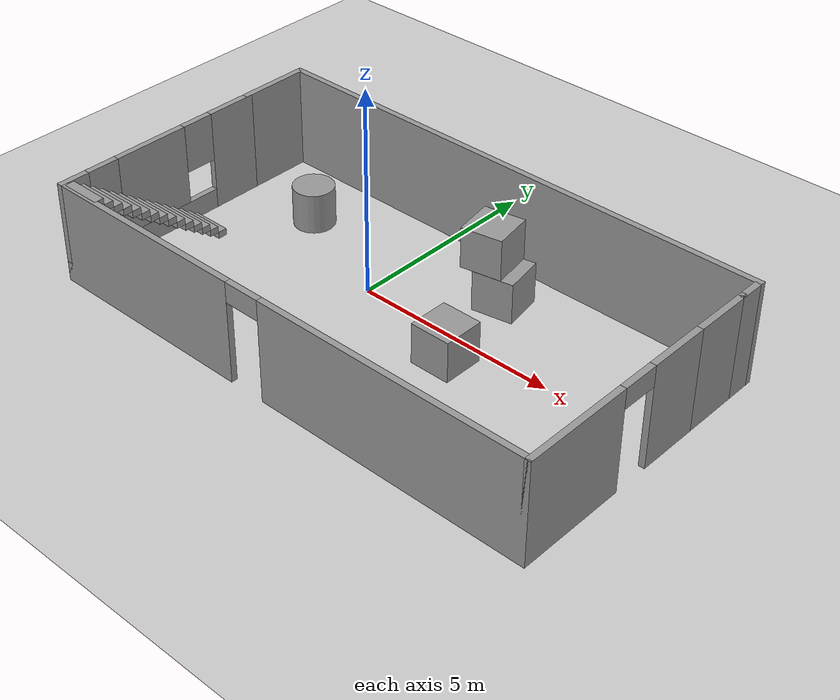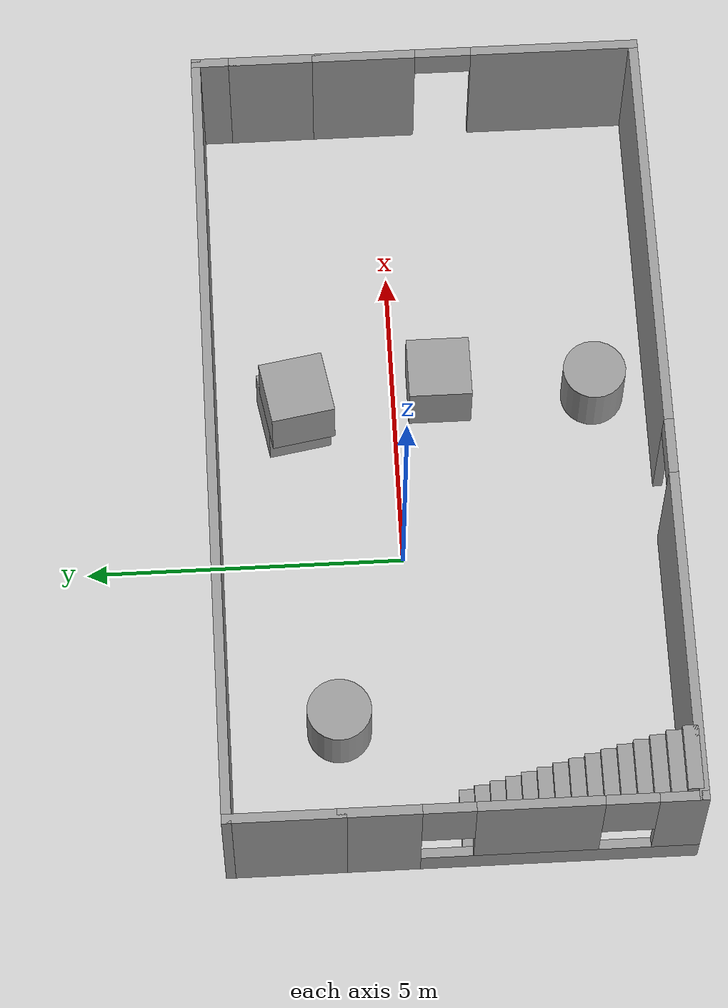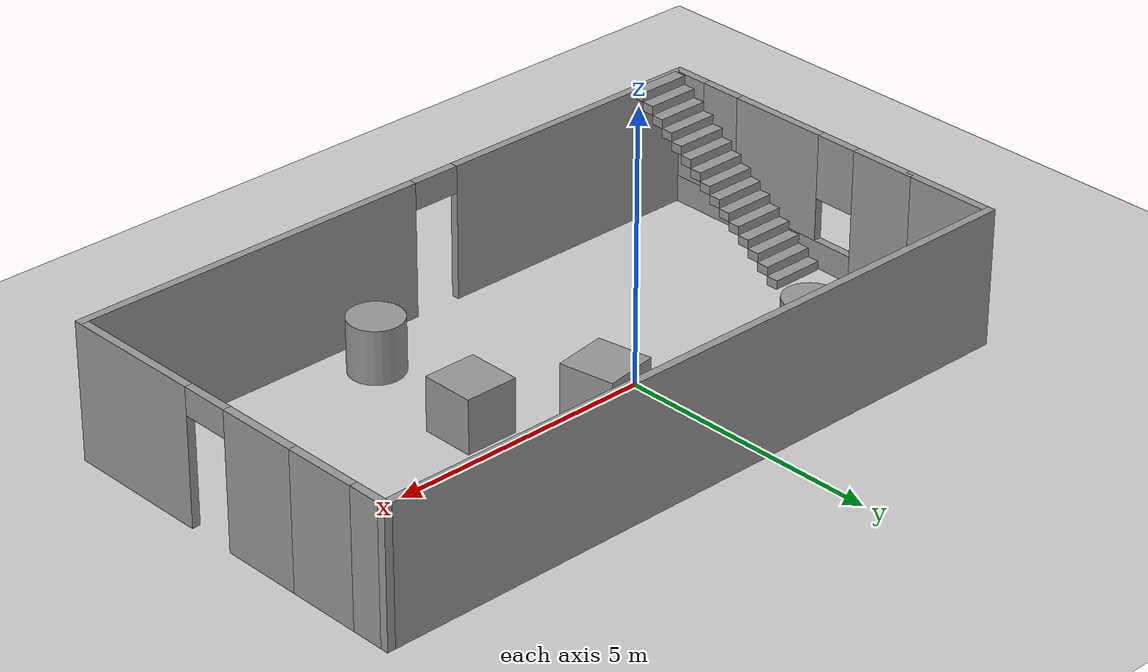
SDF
<sdf version="1.7">
 <world name="default">
  <light name="sun" type="directional">
   <pose>0 0 10 0 -0 0</pose>
   <diffuse>0.8 0.8 0.8 1</diffuse>
   <specular>0.2 0.2 0.2 1</specular>
   <attenuation>
    <range>1000</range>
    <constant>0.9</constant>
    <linear>0.01</linear>
    <quadratic>0.001</quadratic>
   </attenuation>
   <direction>-0.5 0.1 -0.9</direction>
   <spot><inner_angle>0</inner_angle><outer_angle>0</outer_angle><falloff>0</falloff></spot>
  </light>
  <model name="ground_plane">
   <static>1</static>
   <link name="link">
    <collision name="collision">
     <geometry><plane><normal>0 0 1</normal><size>100 100</size></plane></geometry>
     <surface><friction><ode><mu>100</mu><mu2>50</mu2></ode></friction></surface>
    </collision>
    <visual name="visual">
     <cast_shadows>0</cast_shadows>
     <geometry><plane><normal>0 0 1</normal><size>100 100</size></plane></geometry>
     <material>
      <script><uri>file://media/materials/scripts/gazebo.material</uri><name>Gazebo/Grey</name></script>
     </material>
    </visual>
   </link>
  </model>
  <gravity>0 0 -9.8</gravity>
  <magnetic_field>6e-06 2.3e-05 -4.2e-05</magnetic_field>
  <atmosphere type="adiabatic"/>
  <physics type="ode">
   <max_step_size>0.001</max_step_size>
   <real_time_factor>1</real_time_factor>
   <real_time_update_rate>1000</real_time_update_rate>
  </physics>
  <scene><ambient>0.4 0.4 0.4 1</ambient><background>0.7 0.7 0.7 1</background><shadows>1</shadows></scene>
  <audio><device>default</device></audio>
  <spherical_coordinates>
   <surface_model>EARTH_WGS84</surface_model>
   <latitude_deg>0</latitude_deg>
   <longitude_deg>0</longitude_deg>
   <elevation>0</elevation>
   <heading_deg>0</heading_deg>
  </spherical_coordinates>
  <model name="test">
   <pose>1.38086 -0.5972 0 0 -0 0</pose>
   <link name="Stairs_0">
    <visual name="Stairs_0_Visual_0">
     <pose>-5.815 -0.141667 0.083333 0 -0 0</pose>
     <geometry><box><size>1 0.233333 0.166667</size></box></geometry>
     <material>
      <script><uri>file://media/materials/scripts/gazebo.material</uri><name>Gazebo/Grey</name></script>
      <ambient>1 1 1 1</ambient>
     </material>
     <meta><layer>0</layer></meta>
    </visual>
    <collision name="Stairs_0_Collision_0">
     <geometry><box><size>1 0.233333 0.166667</size></box></geometry>
     <pose>-5.815 -0.141667 0.083333 0 -0 0</pose>
    </collision>
    <visual name="Stairs_0_Visual_1">
     <pose>-5.815 -0.375 0.25 0 -0 0</pose>
     <geometry><box><size>1 0.233333 0.166667</size></box></geometry>
     <material>
      <script><uri>file://media/materials/scripts/gazebo.material</uri><name>Gazebo/Grey</name></script>
      <ambient>1 1 1 1</ambient>
     </material>
     <meta><layer>0</layer></meta>
    </visual>
    <collision name="Stairs_0_Collision_1">
     <geometry><box><size>1 0.233333 0.166667</size></box></geometry>
     <pose>-5.815 -0.375 0.25 0 -0 0</pose>
    </collision>
    <visual name="Stairs_0_Visual_2">
     <pose>-5.815 -0.608333 0.416667 0 -0 0</pose>
     <geometry><box><size>1 0.233333 0.166667</size></box></geometry>
     <material>
      <script><uri>file://media/materials/scripts/gazebo.material</uri><name>Gazebo/Grey</name></script>
      <ambient>1 1 1 1</ambient>
     </material>
     <meta><layer>0</layer></meta>
    </visual>
    <collision name="Stairs_0_Collision_2">
     <geometry><box><size>1 0.233333 0.166667</size></box></geometry>
     <pose>-5.815 -0.608333 0.416667 0 -0 0</pose>
    </collision>
    <visual name="Stairs_0_Visual_3">
     <pose>-5.815 -0.841667 0.583333 0 -0 0</pose>
     <geometry><box><size>1 0.233333 0.166667</size></box></geometry>
     <material>
      <script><uri>file://media/materials/scripts/gazebo.material</uri><name>Gazebo/Grey</name></script>
      <ambient>1 1 1 1</ambient>
     </material>
     <meta><layer>0</layer></meta>
    </visual>
    <collision name="Stairs_0_Collision_3">
     <geometry><box><size>1 0.233333 0.166667</size></box></geometry>
     <pose>-5.815 -0.841667 0.583333 0 -0 0</pose>
    </collision>
    <visual name="Stairs_0_Visual_4">
     <pose>-5.815 -1.075 0.75 0 -0 0</pose>
     <geometry><box><size>1 0.233333 0.166667</size></box></geometry>
     <material>
      <script><uri>file://media/materials/scripts/gazebo.material</uri><name>Gazebo/Grey</name></script>
      <ambient>1 1 1 1</ambient>
     </material>
     <meta><layer>0</layer></meta>
    </visual>
    <collision name="Stairs_0_Collision_4">
     <geometry><box><size>1 0.233333 0.166667</size></box></geometry>
     <pose>-5.815 -1.075 0.75 0 -0 0</pose>
    </collision>
    <visual name="Stairs_0_Visual_5">
     <pose>-5.815 -1.30833 0.916667 0 -0 0</pose>
     <geometry><box><size>1 0.233333 0.166667</size></box></geometry>
     <material>
      <script><uri>file://media/materials/scripts/gazebo.material</uri><name>Gazebo/Grey</name></script>
      <ambient>1 1 1 1</ambient>
     </material>
     <meta><layer>0</layer></meta>
    </visual>
    <collision name="Stairs_0_Collision_5">
     <geometry><box><size>1 0.233333 0.166667</size></box></geometry>
     <pose>-5.815 -1.30833 0.916667 0 -0 0</pose>
    </collision>
    <visual name="Stairs_0_Visual_6">
     <pose>-5.815 -1.54167 1.08333 0 -0 0</pose>
     <geometry><box><size>1 0.233333 0.166667</size></box></geometry>
     <material>
      <script><uri>file://media/materials/scripts/gazebo.material</uri><name>Gazebo/Grey</name></script>
      <ambient>1 1 1 1</ambient>
     </material>
     <meta><layer>0</layer></meta>
    </visual>
    <collision name="Stairs_0_Collision_6">
     <geometry><box><size>1 0.233333 0.166667</size></box></geometry>
     <pose>-5.815 -1.54167 1.08333 0 -0 0</pose>
    </collision>
    <visual name="Stairs_0_Visual_7">
     <pose>-5.815 -1.775 1.25 0 -0 0</pose>
     <geometry><box><size>1 0.233333 0.166667</size></box></geometry>
     <material>
      <script><uri>file://media/materials/scripts/gazebo.material</uri><name>Gazebo/Grey</name></script>
      <ambient>1 1 1 1</ambient>
     </material>
     <meta><layer>0</layer></meta>
    </visual>
    <collision name="Stairs_0_Collision_7">
     <geometry><box><size>1 0.233333 0.166667</size></box></geometry>
     <pose>-5.815 -1.775 1.25 0 -0 0</pose>
    </collision>
    <visual name="Stairs_0_Visual_8">
     <pose>-5.815 -2.00833 1.41667 0 -0 0</pose>
     <geometry><box><size>1 0.233333 0.166667</size></box></geometry>
     <material>
      <script><uri>file://media/materials/scripts/gazebo.material</uri><name>Gazebo/Grey</name></script>
      <ambient>1 1 1 1</ambient>
     </material>
     <meta><layer>0</layer></meta>
    </visual>
    <collision name="Stairs_0_Collision_8">
     <geometry><box><size>1 0.233333 0.166667</size></box></geometry>
     <pose>-5.815 -2.00833 1.41667 0 -0 0</pose>
    </collision>
    <visual name="Stairs_0_Visual_9">
     <pose>-5.815 -2.24167 1.58333 0 -0 0</pose>
     <geometry><box><size>1 0.233333 0.166667</size></box></geometry>
     <material>
      <script><uri>file://media/materials/scripts/gazebo.material</uri><name>Gazebo/Grey</name></script>
      <ambient>1 1 1 1</ambient>
     </material>
     <meta><layer>0</layer></meta>
    </visual>
    <collision name="Stairs_0_Collision_9">
     <geometry><box><size>1 0.233333 0.166667</size></box></geometry>
     <pose>-5.815 -2.24167 1.58333 0 -0 0</pose>
    </collision>
    <visual name="Stairs_0_Visual_10">
     <pose>-5.815 -2.475 1.75 0 -0 0</pose>
     <geometry><box><size>1 0.233333 0.166667</size></box></geometry>
     <material>
      <script><uri>file://media/materials/scripts/gazebo.material</uri><name>Gazebo/Grey</name></script>
      <ambient>1 1 1 1</ambient>
     </material>
     <meta><layer>0</layer></meta>
    </visual>
    <collision name="Stairs_0_Collision_10">
     <geometry><box><size>1 0.233333 0.166667</size></box></geometry>
     <pose>-5.815 -2.475 1.75 0 -0 0</pose>
    </collision>
    <visual name="Stairs_0_Visual_11">
     <pose>-5.815 -2.70833 1.91667 0 -0 0</pose>
     <geometry><box><size>1 0.233333 0.166667</size></box></geometry>
     <material>
      <script><uri>file://media/materials/scripts/gazebo.material</uri><name>Gazebo/Grey</name></script>
      <ambient>1 1 1 1</ambient>
     </material>
     <meta><layer>0</layer></meta>
    </visual>
    <collision name="Stairs_0_Collision_11">
     <geometry><box><size>1 0.233333 0.166667</size></box></geometry>
     <pose>-5.815 -2.70833 1.91667 0 -0 0</pose>
    </collision>
    <visual name="Stairs_0_Visual_12">
     <pose>-5.815 -2.94167 2.08333 0 -0 0</pose>
     <geometry><box><size>1 0.233333 0.166667</size></box></geometry>
     <material>
      <script><uri>file://media/materials/scripts/gazebo.material</uri><name>Gazebo/Grey</name></script>
      <ambient>1 1 1 1</ambient>
     </material>
     <meta><layer>0</layer></meta>
    </visual>
    <collision name="Stairs_0_Collision_12">
     <geometry><box><size>1 0.233333 0.166667</size></box></geometry>
     <pose>-5.815 -2.94167 2.08333 0 -0 0</pose>
    </collision>
    <visual name="Stairs_0_Visual_13">
     <pose>-5.815 -3.175 2.25 0 -0 0</pose>
     <geometry><box><size>1 0.233333 0.166667</size></box></geometry>
     <material>
      <script><uri>file://media/materials/scripts/gazebo.material</uri><name>Gazebo/Grey</name></script>
      <ambient>1 1 1 1</ambient>
     </material>
     <meta><layer>0</layer></meta>
    </visual>
    <collision name="Stairs_0_Collision_13">
     <geometry><box><size>1 0.233333 0.166667</size></box></geometry>
     <pose>-5.815 -3.175 2.25 0 -0 0</pose>
    </collision>
    <visual name="Stairs_0_Visual_14">
     <pose>-5.815 -3.40833 2.41667 0 -0 0</pose>
     <geometry><box><size>1 0.233333 0.166667</size></box></geometry>
     <material>
      <script><uri>file://media/materials/scripts/gazebo.material</uri><name>Gazebo/Grey</name></script>
      <ambient>1 1 1 1</ambient>
     </material>
     <meta><layer>0</layer></meta>
    </visual>
    <collision name="Stairs_0_Collision_14">
     <geometry><box><size>1 0.233333 0.166667</size></box></geometry>
     <pose>-5.815 -3.40833 2.41667 0 -0 0</pose>
    </collision>
   </link>
   <link name="Wall_0">
    <pose>-6.425 -0.85 0 0 -0 -1.5708</pose>
    <visual name="Wall_0_Visual_0">
     <pose>-2.1175 0 1.25 0 -0 0</pose>
     <geometry><box><size>1.265 0.15 2.5</size></box></geometry>
     <material>
      <script><uri>file://media/materials/scripts/gazebo.material</uri><name>Gazebo/Grey</name></script>
      <ambient>1 1 1 1</ambient>
     </material>
     <meta><layer>0</layer></meta>
    </visual>
    <collision name="Wall_0_Collision_0">
     <geometry><box><size>1.265 0.15 2.5</size></box></geometry>
     <pose>-2.1175 0 1.25 0 -0 0</pose>
    </collision>
    <visual name="Wall_0_Visual_1">
     <pose>0.6325 0 0.25 0 -0 0</pose>
     <geometry><box><size>4.235 0.15 0.5</size></box></geometry>
     <material>
      <script><uri>file://media/materials/scripts/gazebo.material</uri><name>Gazebo/Grey</name></script>
      <ambient>1 1 1 1</ambient>
     </material>
     <meta><layer>0</layer></meta>
    </visual>
    <collision name="Wall_0_Collision_1">
     <geometry><box><size>4.235 0.15 0.5</size></box></geometry>
     <pose>0.6325 0 0.25 0 -0 0</pose>
    </collision>
    <visual name="Wall_0_Visual_2">
     <pose>0.265 0 1.5 0 -0 0</pose>
     <geometry><box><size>1.9 0.15 2</size></box></geometry>
     <material>
      <script><uri>file://media/materials/scripts/gazebo.material</uri><name>Gazebo/Grey</name></script>
      <ambient>1 1 1 1</ambient>
     </material>
     <meta><layer>0</layer></meta>
    </visual>
    <collision name="Wall_0_Collision_2">
     <geometry><box><size>1.9 0.15 2</size></box></geometry>
     <pose>0.265 0 1.5 0 -0 0</pose>
    </collision>
    <visual name="Wall_0_Visual_3">
     <pose>2.3825 0 1.5 0 -0 0</pose>
     <geometry><box><size>0.735 0.15 2</size></box></geometry>
     <material>
      <script><uri>file://media/materials/scripts/gazebo.material</uri><name>Gazebo/Grey</name></script>
      <ambient>1 1 1 1</ambient>
     </material>
     <meta><layer>0</layer></meta>
    </visual>
    <collision name="Wall_0_Collision_3">
     <geometry><box><size>0.735 0.15 2</size></box></geometry>
     <pose>2.3825 0 1.5 0 -0 0</pose>
    </collision>
    <visual name="Wall_0_Visual_4">
     <pose>-1.085 0 1.9 0 -0 0</pose>
     <geometry><box><size>0.8 0.15 1.2</size></box></geometry>
     <material>
      <script><uri>file://media/materials/scripts/gazebo.material</uri><name>Gazebo/Grey</name></script>
      <ambient>1 1 1 1</ambient>
     </material>
     <meta><layer>0</layer></meta>
    </visual>
    <collision name="Wall_0_Collision_4">
     <geometry><box><size>0.8 0.15 1.2</size></box></geometry>
     <pose>-1.085 0 1.9 0 -0 0</pose>
    </collision>
    <visual name="Wall_0_Visual_5">
     <pose>1.615 0 1.9 0 -0 0</pose>
     <geometry><box><size>0.8 0.15 1.2</size></box></geometry>
     <material>
      <script><uri>file://media/materials/scripts/gazebo.material</uri><name>Gazebo/Grey</name></script>
      <ambient>1 1 1 1</ambient>
     </material>
     <meta><layer>0</layer></meta>
    </visual>
    <collision name="Wall_0_Collision_5">
     <geometry><box><size>0.8 0.15 1.2</size></box></geometry>
     <pose>1.615 0 1.9 0 -0 0</pose>
    </collision>
   </link>
   <link name="Wall_1">
    <pose>0 -3.525 0 0 -0 0</pose>
    <visual name="Wall_1_Visual_0">
     <pose>-3.8425 0 1.25 0 -0 0</pose>
     <geometry><box><size>5.315 0.15 2.5</size></box></geometry>
     <material>
      <script><uri>file://media/materials/scripts/gazebo.material</uri><name>Gazebo/Grey</name></script>
      <ambient>1 1 1 1</ambient>
     </material>
     <meta><layer>0</layer></meta>
    </visual>
    <collision name="Wall_1_Collision_0">
     <geometry><box><size>5.315 0.15 2.5</size></box></geometry>
     <pose>-3.8425 0 1.25 0 -0 0</pose>
    </collision>
    <visual name="Wall_1_Visual_1">
     <pose>3.1075 0 1.25 0 -0 0</pose>
     <geometry><box><size>6.785 0.15 2.5</size></box></geometry>
     <material>
      <script><uri>file://media/materials/scripts/gazebo.material</uri><name>Gazebo/Grey</name></script>
      <ambient>1 1 1 1</ambient>
     </material>
     <meta><layer>0</layer></meta>
    </visual>
    <collision name="Wall_1_Collision_1">
     <geometry><box><size>6.785 0.15 2.5</size></box></geometry>
     <pose>3.1075 0 1.25 0 -0 0</pose>
    </collision>
    <visual name="Wall_1_Visual_2">
     <pose>-0.735 0 2.25 0 -0 0</pose>
     <geometry><box><size>0.9 0.15 0.5</size></box></geometry>
     <material>
      <script><uri>file://media/materials/scripts/gazebo.material</uri><name>Gazebo/Grey</name></script>
      <ambient>1 1 1 1</ambient>
     </material>
     <meta><layer>0</layer></meta>
    </visual>
    <collision name="Wall_1_Collision_2">
     <geometry><box><size>0.9 0.15 0.5</size></box></geometry>
     <pose>-0.735 0 2.25 0 -0 0</pose>
    </collision>
   </link>
   <link name="Wall_2">
    <pose>6.425 -0.975 0 0 -0 1.5708</pose>
    <visual name="Wall_2_Visual_0">
     <pose>-1.2775 0 1.25 0 -0 0</pose>
     <geometry><box><size>2.695 0.15 2.5</size></box></geometry>
     <material>
      <script><uri>file://media/materials/scripts/gazebo.material</uri><name>Gazebo/Grey</name></script>
      <ambient>1 1 1 1</ambient>
     </material>
     <meta><layer>0</layer></meta>
    </visual>
    <collision name="Wall_2_Collision_0">
     <geometry><box><size>2.695 0.15 2.5</size></box></geometry>
     <pose>-1.2775 0 1.25 0 -0 0</pose>
    </collision>
    <visual name="Wall_2_Visual_1">
     <pose>1.7975 0 1.25 0 -0 0</pose>
     <geometry><box><size>1.655 0.15 2.5</size></box></geometry>
     <material>
      <script><uri>file://media/materials/scripts/gazebo.material</uri><name>Gazebo/Grey</name></script>
      <ambient>1 1 1 1</ambient>
     </material>
     <meta><layer>0</layer></meta>
    </visual>
    <collision name="Wall_2_Collision_1">
     <geometry><box><size>1.655 0.15 2.5</size></box></geometry>
     <pose>1.7975 0 1.25 0 -0 0</pose>
    </collision>
    <visual name="Wall_2_Visual_2">
     <pose>0.52 0 2.25 0 -0 0</pose>
     <geometry><box><size>0.9 0.15 0.5</size></box></geometry>
     <material>
      <script><uri>file://media/materials/scripts/gazebo.material</uri><name>Gazebo/Grey</name></script>
      <ambient>1 1 1 1</ambient>
     </material>
     <meta><layer>0</layer></meta>
    </visual>
    <collision name="Wall_2_Collision_2">
     <geometry><box><size>0.9 0.15 0.5</size></box></geometry>
     <pose>0.52 0 2.25 0 -0 0</pose>
    </collision>
   </link>
   <link name="Wall_4">
    <collision name="Wall_4_Collision">
     <geometry><box><size>1.5 0.15 2.5</size></box></geometry>
     <pose>0 0 1.25 0 -0 0</pose>
    </collision>
    <visual name="Wall_4_Visual">
     <pose>0 0 1.25 0 -0 0</pose>
     <geometry><box><size>1.5 0.15 2.5</size></box></geometry>
     <material>
      <script><uri>file://media/materials/scripts/gazebo.material</uri><name>Gazebo/Grey</name></script>
      <ambient>1 1 1 1</ambient>
     </material>
     <meta><layer>0</layer></meta>
    </visual>
    <pose>6.425 2.25 0 0 -0 1.5708</pose>
   </link>
   <link name="Wall_5">
    <collision name="Wall_5_Collision">
     <geometry><box><size>0.75 0.15 2.5</size></box></geometry>
     <pose>0 0 1.25 0 -0 0</pose>
    </collision>
    <visual name="Wall_5_Visual">
     <pose>0 0 1.25 0 -0 0</pose>
     <geometry><box><size>0.75 0.15 2.5</size></box></geometry>
     <material>
      <script><uri>file://media/materials/scripts/gazebo.material</uri><name>Gazebo/Grey</name></script>
      <ambient>1 1 1 1</ambient>
     </material>
     <meta><layer>0</layer></meta>
    </visual>
    <pose>6.425 3.225 0 0 -0 1.5708</pose>
   </link>
   <link name="Wall_6">
    <collision name="Wall_6_Collision">
     <geometry><box><size>13 0.15 2.5</size></box></geometry>
     <pose>0 0 1.25 0 -0 0</pose>
    </collision>
    <visual name="Wall_6_Visual">
     <pose>0 0 1.25 0 -0 0</pose>
     <geometry><box><size>13 0.15 2.5</size></box></geometry>
     <material>
      <script><uri>file://media/materials/scripts/gazebo.material</uri><name>Gazebo/Grey</name></script>
      <ambient>1 1 1 1</ambient>
     </material>
     <meta><layer>0</layer></meta>
    </visual>
    <pose>0 3.525 0 0 -0 3.14159</pose>
   </link>
   <link name="Wall_7">
    <collision name="Wall_7_Collision">
     <geometry><box><size>1.85 0.15 2.5</size></box></geometry>
     <pose>0 0 1.25 0 -0 0</pose>
    </collision>
    <visual name="Wall_7_Visual">
     <pose>0 0 1.25 0 -0 0</pose>
     <geometry><box><size>1.85 0.15 2.5</size></box></geometry>
     <material>
      <script><uri>file://media/materials/scripts/gazebo.material</uri><name>Gazebo/Grey</name></script>
      <ambient>1 1 1 1</ambient>
     </material>
     <meta><layer>0</layer></meta>
    </visual>
    <pose>-6.425 2.675 0 0 -0 -1.5708</pose>
   </link>
   <static>1</static>
  </model>
  <model name="unit_box">
   <pose>2.1892 1.56822 1.4912 -0.000117 -0.008393 0.172122</pose>
   <link name="link">
    <inertial>
     <mass>1</mass>
     <inertia>
      <ixx>0.166667</ixx>
      <ixy>0</ixy>
      <ixz>0</ixz>
      <iyy>0.166667</iyy>
      <iyz>0</iyz>
      <izz>0.166667</izz>
     </inertia>
    </inertial>
    <collision name="collision"><geometry><box><size>1 1 1</size></box></geometry></collision>
    <visual name="visual">
     <geometry><box><size>1 1 1</size></box></geometry>
     <material>
      <script><name>Gazebo/Grey</name><uri>file://media/materials/scripts/gazebo.material</uri></script>
     </material>
    </visual>
   </link>
  </model>
  <model name="unit_cylinder">
   <pose>-2.83837 1.15814 0.499998 3e-06 -4e-06 0</pose>
   <link name="link">
    <inertial>
     <mass>1</mass>
     <inertia><ixx>0.145833</ixx><ixy>0</ixy><ixz>0</ixz><iyy>0.145833</iyy><iyz>0</iyz><izz>0.125</izz></inertia>
    </inertial>
    <collision name="collision">
     <geometry><cylinder><radius>0.5</radius><length>1</length></cylinder></geometry>
    </collision>
    <visual name="visual">
     <geometry><cylinder><radius>0.5</radius><length>1</length></cylinder></geometry>
     <material>
      <script><name>Gazebo/Grey</name><uri>file://media/materials/scripts/gazebo.material</uri></script>
     </material>
    </visual>
   </link>
  </model>
  <model name="unit_box_0">
   <pose>2.49651 1.61861 0.493804 -0.000123 -0.008357 0.172883</pose>
   <link name="link">
    <inertial>
     <mass>1</mass>
     <inertia>
      <ixx>0.166667</ixx>
      <ixy>0</ixy>
      <ixz>0</ixz>
      <iyy>0.166667</iyy>
      <iyz>0</iyz>
      <izz>0.166667</izz>
     </inertia>
    </inertial>
    <collision name="collision"><geometry><box><size>1 1 1</size></box></geometry></collision>
    <visual name="visual">
     <geometry><box><size>1 1 1</size></box></geometry>
     <material>
      <script><name>Gazebo/Grey</name><uri>file://media/materials/scripts/gazebo.material</uri></script>
     </material>
    </visual>
   </link>
  </model>
  <model name="unit_box_1">
   <pose>2.90822 -0.723209 0.499995 0 1e-05 0</pose>
   <link name="link">
    <inertial>
     <mass>1</mass>
     <inertia>
      <ixx>0.166667</ixx>
      <ixy>0</ixy>
      <ixz>0</ixz>
      <iyy>0.166667</iyy>
      <iyz>0</iyz>
      <izz>0.166667</izz>
     </inertia>
    </inertial>
    <collision name="collision"><geometry><box><size>1 1 1</size></box></geometry></collision>
    <visual name="visual">
     <geometry><box><size>1 1 1</size></box></geometry>
     <material>
      <script><name>Gazebo/Grey</name><uri>file://media/materials/scripts/gazebo.material</uri></script>
     </material>
    </visual>
   </link>
  </model>
  <model name="unit_cylinder_0">
   <pose>2.73367 -3.19276 0.499993 -3e-06 -4e-06 -0</pose>
   <link name="link">
    <inertial>
     <mass>1</mass>
     <inertia><ixx>0.145833</ixx><ixy>0</ixy><ixz>0</ixz><iyy>0.145833</iyy><iyz>0</iyz><izz>0.125</izz></inertia>
    </inertial>
    <collision name="collision">
     <geometry><cylinder><radius>0.5</radius><length>1</length></cylinder></geometry>
    </collision>
    <visual name="visual">
     <geometry><cylinder><radius>0.5</radius><length>1</length></cylinder></geometry>
     <material>
      <script><name>Gazebo/Grey</name><uri>file://media/materials/scripts/gazebo.material</uri></script>
     </material>
    </visual>
   </link>
  </model>
 </world>
</sdf>
